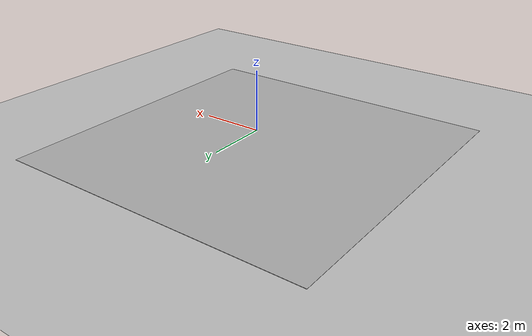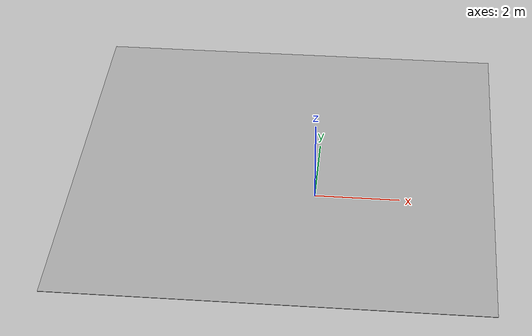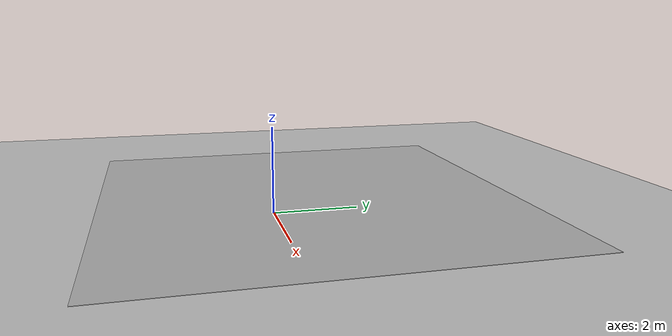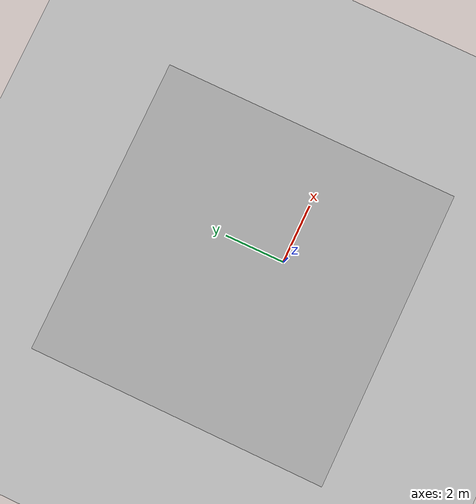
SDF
<sdf version="1.7">
 <world name="default">
  <light name="sun" type="directional">
   <pose>0 0 10 0 -0 0</pose>
   <diffuse>0.8 0.8 0.8 1</diffuse>
   <specular>0.2 0.2 0.2 1</specular>
   <attenuation>
    <range>1000</range>
    <constant>0.9</constant>
    <linear>0.01</linear>
    <quadratic>0.001</quadratic>
   </attenuation>
   <direction>-0.5 0.1 -0.9</direction>
   <spot><inner_angle>0</inner_angle><outer_angle>0</outer_angle><falloff>0</falloff></spot>
  </light>
  <model name="ground_plane">
   <static>1</static>
   <link name="link">
    <collision name="collision">
     <geometry><plane><normal>0 0 1</normal><size>100 100</size></plane></geometry>
     <surface><friction><ode><mu>100</mu><mu2>50</mu2></ode></friction></surface>
    </collision>
    <visual name="visual">
     <cast_shadows>0</cast_shadows>
     <geometry><plane><normal>0 0 1</normal><size>100 100</size></plane></geometry>
     <material>
      <script><uri>file://media/materials/scripts/gazebo.material</uri><name>Gazebo/Grey</name></script>
     </material>
    </visual>
   </link>
  </model>
  <gravity>0 0 -9.8</gravity>
  <magnetic_field>6e-06 2.3e-05 -4.2e-05</magnetic_field>
  <atmosphere type="adiabatic"/>
  <physics type="ode">
   <max_step_size>0.001</max_step_size>
   <real_time_factor>1</real_time_factor>
   <real_time_update_rate>1000</real_time_update_rate>
  </physics>
  <scene><ambient>0.4 0.4 0.4 1</ambient><background>0.7 0.7 0.7 1</background><shadows>1</shadows></scene>
  <spherical_coordinates>
   <surface_model>EARTH_WGS84</surface_model>
   <latitude_deg>0</latitude_deg>
   <longitude_deg>0</longitude_deg>
   <elevation>0</elevation>
   <heading_deg>0</heading_deg>
  </spherical_coordinates>
  <model name="Track_world">
   <static>1</static>
   <link name="link_ground">
    <collision name="collision">
     <geometry><plane><normal>0 0 1</normal><size>10 10</size></plane></geometry>
     <surface><friction><ode><mu>100</mu><mu2>50</mu2></ode></friction></surface>
    </collision>
    <visual name="visual_ground">
     <cast_shadows>0</cast_shadows>
     <geometry><plane><normal>0 0 1</normal><size>10 10</size></plane></geometry>
     <material>
      <script><uri>file:///Track.world/materials/scripts/floor.material</uri><name>Lane</name></script>
     </material>
    </visual>
   </link>
   <pose>-0.799359 0.991902 0.1 0 -0 0</pose>
  </model>
  <light name="user_directional_light_0" type="directional">
   <pose>0.682636 1.98959 1 0 -0 0</pose>
   <diffuse>0.5 0.5 0.5 1</diffuse>
   <specular>0.1 0.1 0.1 1</specular>
   <direction>0.1 0.1 -0.9</direction>
   <attenuation>
    <range>20</range>
    <constant>0.5</constant>
    <linear>0.01</linear>
    <quadratic>0.001</quadratic>
   </attenuation>
  </light>
  <light name="user_directional_light_1" type="directional">
   <pose>-4.08401 0.903107 1 0 -0 0</pose>
   <diffuse>0.5 0.5 0.5 1</diffuse>
   <specular>0.1 0.1 0.1 1</specular>
   <direction>0.1 0.1 -0.9</direction>
   <attenuation>
    <range>20</range>
    <constant>0.5</constant>
    <linear>0.01</linear>
    <quadratic>0.001</quadratic>
   </attenuation>
  </light>
  <light name="user_directional_light_2" type="directional">
   <pose>1.46473 -2.20483 1 0 -0 0</pose>
   <diffuse>0.5 0.5 0.5 1</diffuse>
   <specular>0.1 0.1 0.1 1</specular>
   <direction>0.1 0.1 -0.9</direction>
   <attenuation>
    <range>20</range>
    <constant>0.5</constant>
    <linear>0.01</linear>
    <quadratic>0.001</quadratic>
   </attenuation>
  </light>
  <light name="user_directional_light_3" type="directional">
   <pose>-5.20176 4.64923 1 0 -0 0</pose>
   <diffuse>0.5 0.5 0.5 1</diffuse>
   <specular>0.1 0.1 0.1 1</specular>
   <direction>0.1 0.1 -0.9</direction>
   <attenuation>
    <range>20</range>
    <constant>0.5</constant>
    <linear>0.01</linear>
    <quadratic>0.001</quadratic>
   </attenuation>
  </light>
  <light name="user_directional_light_4" type="directional">
   <pose>3.1335 4.94067 1 0 -0 0</pose>
   <diffuse>0.5 0.5 0.5 1</diffuse>
   <specular>0.1 0.1 0.1 1</specular>
   <direction>0.1 0.1 -0.9</direction>
   <attenuation>
    <range>20</range>
    <constant>0.5</constant>
    <linear>0.01</linear>
    <quadratic>0.001</quadratic>
   </attenuation>
  </light>
 </world>
</sdf>
